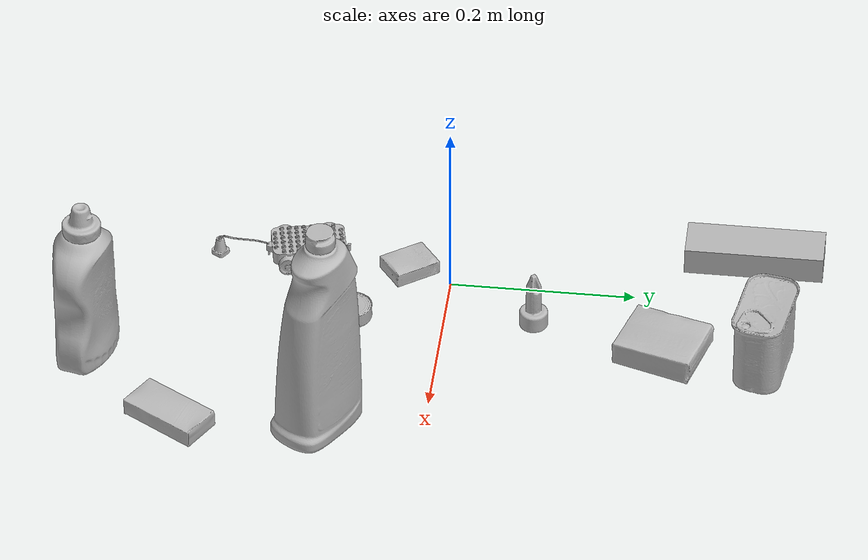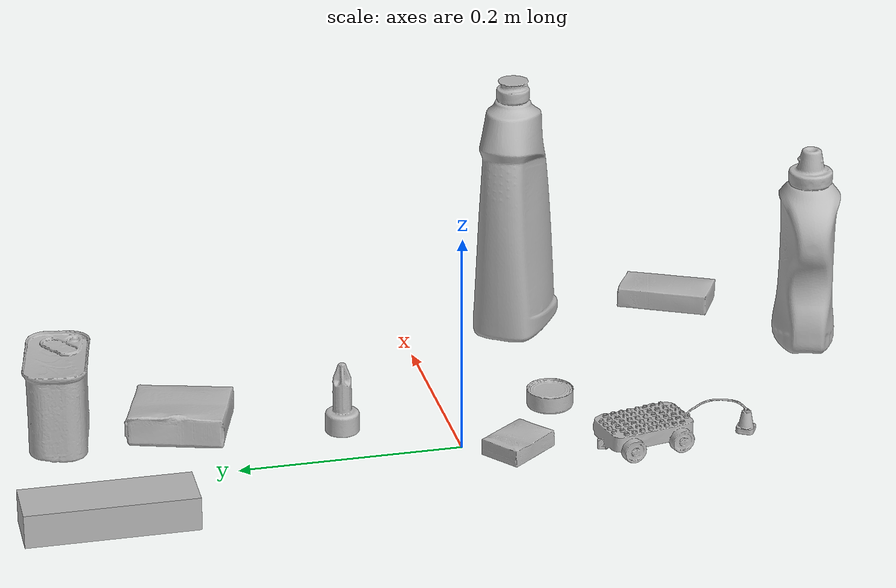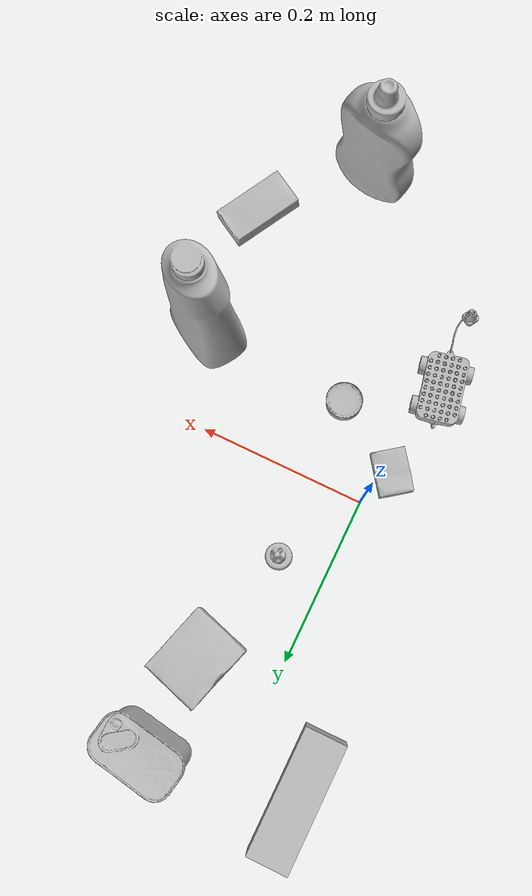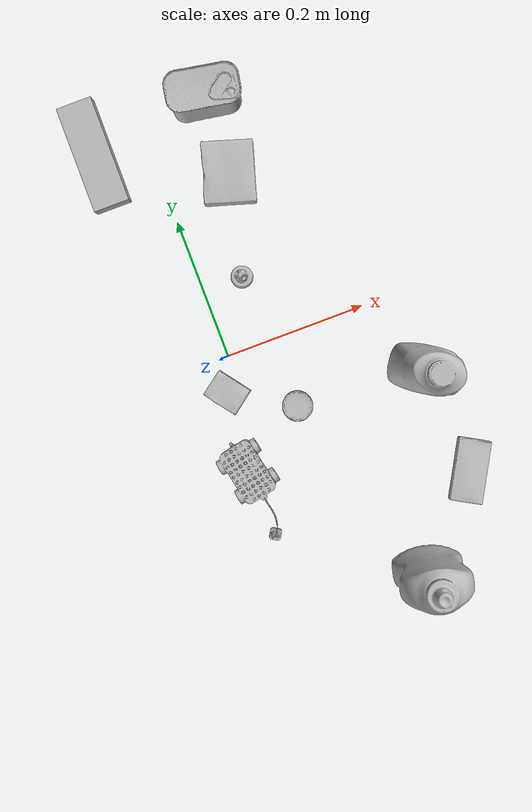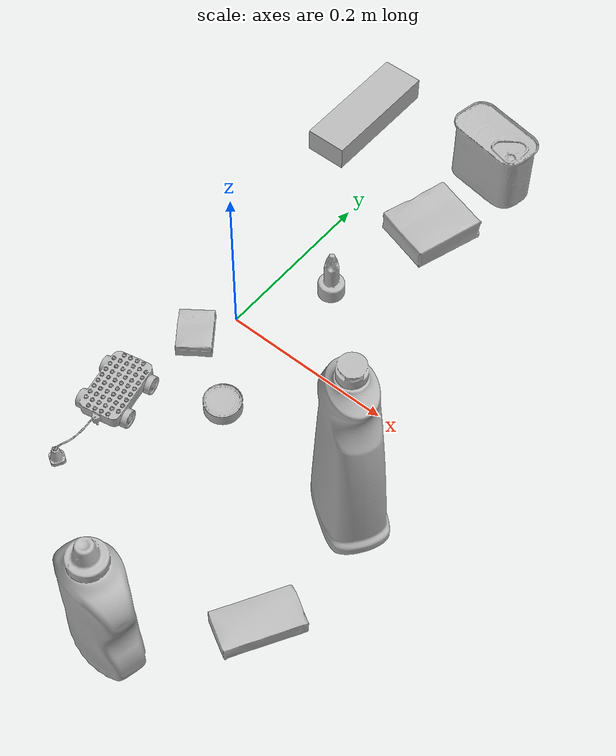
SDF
<sdf version="1.4">
  <world name="default">
    <light name="light1" type="point">
      <pose>0 0 1 0 0 0</pose>
      <diffuse>3 3 3 1</diffuse>
      <specular>3 3 3 1</specular>
    </light>
    <light name="light2" type="point">
      <pose>0 0.5 2 0 0 0</pose>
      <diffuse>1 1 1 1</diffuse>
      <specular>1 1 1 1</specular>
    </light>
    <light name="light3" type="point">
      <pose>0 0.5 2 0 0 0</pose>
      <diffuse>3 3 3 1</diffuse>
      <specular>3 3 3 1</specular>
    </light>
    <scene>
      <ambient>0.7 0.7 0.7</ambient>
    </scene>
    <model name="bottle1">
      <link name="link_bottle1">
        <collision name="default">
          <geometry>
            <mesh>
              <uri>model://bleach_cleanser/collision_meshes/collision.obj</uri>
              <scale>1.0 1.0 1.0</scale>
            </mesh>
          </geometry>
          <surface>
            <friction>
              <ode>
                <mu>0.5</mu>
                <mu2>0.5</mu2>
              </ode>
            </friction>
          <contact>
        <ode>
            <max_vel>0</max_vel>
            <min_depth>0.0001</min_depth>
            <kp>1e8</kp>
        </ode>
    </contact></surface>
        </collision>
        <visual name="default">
          <geometry>
            <mesh>
              <uri>model://bleach_cleanser/visual_meshes/visual.dae</uri>
              <scale>1.0 1.0 1.0</scale>
            </mesh>
          </geometry>
        </visual>
        <inertial>
          <mass>0.8435376882553101</mass>
          <pose>0.00012193185102660209 0.0037838835269212723 -0.02442161925137043 -0.0738167136291003 0.00042011570398771517 -0.0068750683244174</pose>
          <inertia>
            <ixx>0.0041056215</ixx>
            <iyy>0.0038258375</iyy>
            <izz>0.0007019545</izz>
            <ixy>0</ixy>
            <ixz>0</ixz>
            <iyz>0</iyz>
          </inertia>
        </inertial>
      </link>
      <pose>0.2463461309671402 -0.11052606254816055 0.12578411400318146 -0.0001993119177610047 1.7531810342269447e-05 0.9987797853406499</pose>
    </model>
    <model name="bottle2">
      <link name="link_bottle2">
        <collision name="default">
          <geometry>
            <mesh>
              <uri>model://mustard_bottle/collision_meshes/collision.obj</uri>
              <scale>1.0 1.0 1.0</scale>
            </mesh>
          </geometry>
          <surface>
            <friction>
              <ode>
                <mu>0.5</mu>
                <mu2>0.5</mu2>
              </ode>
            </friction>
          <contact>
        <ode>
            <max_vel>0</max_vel>
            <min_depth>0.0001</min_depth>
            <kp>1e8</kp>
        </ode>
    </contact></surface>
        </collision>
        <visual name="default">
          <geometry>
            <mesh>
              <uri>model://mustard_bottle/visual_meshes/visual.dae</uri>
              <scale>1.0 1.0 1.0</scale>
            </mesh>
          </geometry>
        </visual>
        <inertial>
          <mass>0.5862947106361389</mass>
          <pose>0.0005032453336752951 -0.00015647400869056582 -0.01747579500079155 0.0004182326333961274 0.0009465780125852031 0.02485369627950655</pose>
          <inertia>
            <ixx>0.0016280604</ixx>
            <iyy>0.001428485</iyy>
            <izz>0.00042907606</izz>
            <ixy>0</ixy>
            <ixz>0</ixz>
            <iyz>0</iyz>
          </inertia>
        </inertial>
      </link>
      <pose>0.15435832738876343 -0.37025338411331177 0.09583084285259247 -0.012050664084523946 -0.004889691282828124 1.3181287856905737</pose>
    </model>
    <model name="toy1">
      <link name="link_toy1">
        <collision name="default">
          <geometry>
            <mesh>
              <uri>model://d_toy_airplane/collision_meshes/collision.obj</uri>
              <scale>1.0 1.0 1.0</scale>
            </mesh>
          </geometry>
          <surface>
            <friction>
              <ode>
                <mu>0.5</mu>
                <mu2>0.5</mu2>
              </ode>
            </friction>
          <contact>
        <ode>
            <max_vel>0</max_vel>
            <min_depth>0.0001</min_depth>
            <kp>1e8</kp>
        </ode>
    </contact></surface>
        </collision>
        <visual name="default">
          <geometry>
            <mesh>
              <uri>model://d_toy_airplane/visual_meshes/visual.dae</uri>
              <scale>1.0 1.0 1.0</scale>
            </mesh>
          </geometry>
        </visual>
        <inertial>
          <mass>0.016342557966709137</mass>
          <pose>9.410292841494083e-05 -5.809347931062803e-05 -0.011728093959391117 0.0002665850352305412 0.004678995185611379 0.5193821656772198</pose>
          <inertia>
            <ixx>4.8991824e-06</ixx>
            <iyy>4.9028777e-06</iyy>
            <izz>1.4790946e-06</izz>
            <ixy>0</ixy>
            <ixz>0</ixz>
            <iyz>0</iyz>
          </inertia>
        </inertial>
      </link>
      <pose>0.05722856521606445 0.0961107611656189 0.033339470624923706 0.0002079654775572587 -2.3111198552680254e-05 -0.894831703549501</pose>
    </model>
    <model name="toy2">
      <link name="link_toy2">
        <collision name="default">
          <geometry>
            <mesh>
              <uri>model://g_lego_duplo/collision_meshes/collision.obj</uri>
              <scale>0.5 0.5 0.5</scale>
            </mesh>
          </geometry>
          <surface>
            <friction>
              <ode>
                <mu>0.5</mu>
                <mu2>0.5</mu2>
              </ode>
            </friction>
          <contact>
        <ode>
            <max_vel>0</max_vel>
            <min_depth>0.0001</min_depth>
            <kp>1e8</kp>
        </ode>
    </contact></surface>
        </collision>
        <visual name="default">
          <geometry>
            <mesh>
              <uri>model://g_lego_duplo/visual_meshes/visual.dae</uri>
              <scale>0.5 0.5 0.5</scale>
            </mesh>
          </geometry>
        </visual>
        <inertial>
          <mass>0.06075087562203407</mass>
          <pose>-0.02502383105456829 0.0008777320035733283 0.0019403373589739203 0.010962969944672394 0.038108282316868566 -0.09653022106038826</pose>
          <inertia>
            <ixx>2.2007183e-05</ixx>
            <iyy>6.65348e-05</iyy>
            <izz>8.323752e-05</izz>
            <ixy>0</ixy>
            <ixz>0</ixz>
            <iyz>0</iyz>
          </inertia>
        </inertial>
      </link>
      <pose>-0.025378108024597168 -0.1881949007511139 0.014916321262717247 0.0003797744002858775 -0.0024250606948160946 -1.3647423657908846</pose>
    </model>
    <model name="can1">
      <link name="link_can1">
        <collision name="default">
          <geometry>
            <mesh>
              <uri>model://potted_meat_can/collision_meshes/collision.obj</uri>
              <scale>1.0 1.0 1.0</scale>
            </mesh>
          </geometry>
          <surface>
            <friction>
              <ode>
                <mu>0.5</mu>
                <mu2>0.5</mu2>
              </ode>
            </friction>
          <contact>
        <ode>
            <max_vel>0</max_vel>
            <min_depth>0.0001</min_depth>
            <kp>1e8</kp>
        </ode>
    </contact></surface>
        </collision>
        <visual name="default">
          <geometry>
            <mesh>
              <uri>model://potted_meat_can/visual_meshes/visual.dae</uri>
              <scale>1.0 1.0 1.0</scale>
            </mesh>
          </geometry>
        </visual>
        <inertial>
          <mass>0.20078136026859283</mass>
          <pose>0.00022888144303578883 -5.9891190176131204e-05 -0.0006367445457726717 -0.02809335636395505 -0.007232596981483405 0.015406261474000347</pose>
          <inertia>
            <ixx>0.0002582842</ixx>
            <iyy>0.00015692727</iyy>
            <izz>0.0001878526</izz>
            <ixy>0</ixy>
            <ixz>0</ixz>
            <iyz>0</iyz>
          </inertia>
        </inertial>
      </link>
      <pose>0.09766842424869537 0.34410300850868225 0.042128004133701324 8.066883399632988e-09 -4.353713641748999e-07 1.389899091038513</pose>
    </model>
    <model name="can2">
      <link name="link_can2">
        <collision name="default">
          <geometry>
            <mesh>
              <uri>model://tuna_fish_can/collision_meshes/collision.obj</uri>
              <scale>0.5 0.5 0.5</scale>
            </mesh>
          </geometry>
          <surface>
            <friction>
              <ode>
                <mu>0.5</mu>
                <mu2>0.5</mu2>
              </ode>
            </friction>
          <contact>
        <ode>
            <max_vel>0</max_vel>
            <min_depth>0.0001</min_depth>
            <kp>1e8</kp>
        </ode>
    </contact></surface>
        </collision>
        <visual name="default">
          <geometry>
            <mesh>
              <uri>model://tuna_fish_can/visual_meshes/visual.dae</uri>
              <scale>0.5 0.5 0.5</scale>
            </mesh>
          </geometry>
        </visual>
        <inertial>
          <mass>0.014736190438270569</mass>
          <pose>-2.036184559983667e-05 -7.256420758494642e-06 -0.0005269023822620511 -0.0017944748482382063 0.00017166274907885265 0.24056368509195397</pose>
          <inertia>
            <ixx>1.992355e-06</ixx>
            <iyy>1.9840513e-06</iyy>
            <izz>3.409204e-06</izz>
            <ixy>0</ixy>
            <ixz>0</ixz>
            <iyz>0</iyz>
          </inertia>
        </inertial>
      </link>
      <pose>0.06662191450595856 -0.0981404036283493 0.008520001545548439 1.0987129239568687e-08 4.719356563209437e-09 -0.4120406599877641</pose>
    </model>
    <model name="box1">
      <link name="link_box1">
        <collision name="default">
          <geometry>
            <mesh>
              <uri>model://sugar_box/collision_meshes/collision.obj</uri>
              <scale>0.5 0.5 0.5</scale>
            </mesh>
          </geometry>
          <surface>
            <friction>
              <ode>
                <mu>0.5</mu>
                <mu2>0.5</mu2>
              </ode>
            </friction>
          <contact>
        <ode>
            <max_vel>0</max_vel>
            <min_depth>0.0001</min_depth>
            <kp>1e8</kp>
        </ode>
    </contact></surface>
        </collision>
        <visual name="default">
          <geometry>
            <mesh>
              <uri>model://sugar_box/visual_meshes/visual.dae</uri>
              <scale>0.5 0.5 0.5</scale>
            </mesh>
          </geometry>
        </visual>
        <inertial>
          <mass>0.12222740799188614</mass>
          <pose>0.0005171863595023751 1.9245549992774613e-05 -0.00018182404164690524 -0.000404625834306888 0.0010506637544316808 0.0026153790219515644</pose>
          <inertia>
            <ixx>2.5459884e-05</ixx>
            <iyy>8.229157e-05</iyy>
            <izz>9.851283e-05</izz>
            <ixy>0</ixy>
            <ixz>0</ixz>
            <iyz>0</iyz>
          </inertia>
        </inertial>
      </link>
      <pose>0.2588484585285187 -0.2655961513519287 0.011399300768971443 0.0007757747859548792 -0.023432858473551803 -2.0924787524856012</pose>
    </model>
    <model name="box2">
      <link name="link_box2">
        <collision name="default">
          <geometry>
            <mesh>
              <uri>model://jenga/collision_meshes/collision.obj</uri>
              <scale>1.0 1.0 1.0</scale>
            </mesh>
          </geometry>
          <surface>
            <friction>
              <ode>
                <mu>0.5</mu>
                <mu2>0.5</mu2>
              </ode>
            </friction>
          <contact>
        <ode>
            <max_vel>0</max_vel>
            <min_depth>0.0001</min_depth>
            <kp>1e8</kp>
        </ode>
    </contact></surface>
        </collision>
        <visual name="default">
          <geometry>
            <mesh>
              <uri>model://jenga/visual_meshes/visual.dae</uri>
              <scale>1.0 1.0 1.0</scale>
            </mesh>
          </geometry>
        </visual>
        <inertial>
          <mass>0.17645145952701569</mass>
          <pose>-2.502855807051674e-07 -0.00010250011109746993 -4.0923405322246253e-05 0.0 -7.342155186052628e-07 0.0</pose>
          <inertia>
            <ixx>4.8828406e-05</ixx>
            <iyy>0.00033085994</iyy>
            <izz>0.00035322108</izz>
            <ixy>0</ixy>
            <ixz>0</ixz>
            <iyz>0</iyz>
          </inertia>
        </inertial>
      </link>
      <pose>-0.07474850863218307 0.3240015506744385 0.014999995008111 1.3191529690681904e-08 -2.8268179672187254e-10 -1.5728752129419858</pose>
    </model>
    <model name="box3">
      <link name="link_box3">
        <collision name="default">
          <geometry>
            <mesh>
              <uri>model://gelatin_box/collision_meshes/collision.obj</uri>
              <scale>1.0 1.0 1.0</scale>
            </mesh>
          </geometry>
          <surface>
            <friction>
              <ode>
                <mu>0.5</mu>
                <mu2>0.5</mu2>
              </ode>
            </friction>
          <contact>
        <ode>
            <max_vel>0</max_vel>
            <min_depth>0.0001</min_depth>
            <kp>1e8</kp>
        </ode>
    </contact></surface>
        </collision>
        <visual name="default">
          <geometry>
            <mesh>
              <uri>model://gelatin_box/visual_meshes/visual.dae</uri>
              <scale>1.0 1.0 1.0</scale>
            </mesh>
          </geometry>
        </visual>
        <inertial>
          <mass>0.13059620559215546</mass>
          <pose>0.0004319618456065655 0.00011156871914863586 -0.0003640321083366871 -0.0010503721928909568 -0.00475581775899517 0.01644055574591333</pose>
          <inertia>
            <ixx>9.219027e-05</ixx>
            <iyy>6.585102e-05</iyy>
            <izz>0.00014033413</izz>
            <ixy>0</ixy>
            <ixz>0</ixz>
            <iyz>0</iyz>
          </inertia>
        </inertial>
      </link>
      <pose>0.09131327271461487 0.23713889718055725 0.015168314799666405 0.005597429125169932 -0.007304564717851653 2.8372785143726764</pose>
    </model>
    <model name="box4">
      <link name="link_box4">
        <collision name="default">
          <geometry>
            <mesh>
              <uri>model://cracker_box/collision_meshes/collision.obj</uri>
              <scale>0.25 0.25 0.25</scale>
            </mesh>
          </geometry>
          <surface>
            <friction>
              <ode>
                <mu>0.5</mu>
                <mu2>0.5</mu2>
              </ode>
            </friction>
          <contact>
        <ode>
            <max_vel>0</max_vel>
            <min_depth>0.0001</min_depth>
            <kp>1e8</kp>
        </ode>
    </contact></surface>
        </collision>
        <visual name="default">
          <geometry>
            <mesh>
              <uri>model://cracker_box/visual_meshes/visual.dae</uri>
              <scale>0.25 0.25 0.25</scale>
            </mesh>
          </geometry>
        </visual>
        <inertial>
          <mass>0.04771818593144417</mass>
          <pose>0.0002366032567806542 6.358561950037256e-05 -0.00042573839891701937 -0.00031620769108308636 -0.011106489600173282 0.0025467959336867136</pose>
          <inertia>
            <ixx>7.5858593e-06</ixx>
            <iyy>1.2525745e-05</iyy>
            <izz>1.7875387e-05</izz>
            <ixy>0</ixy>
            <ixz>0</ixz>
            <iyz>0</iyz>
          </inertia>
        </inertial>
      </link>
      <pose>-0.018128372728824615 -0.04662533849477768 0.009096023626625538 -0.014050387195532978 -0.005016612935408852 -0.9304476095280488</pose>
    </model>
  <physics type="ode">
      <max_contacts>50</max_contacts>
      <ode>
        <solver>
          <type>quick</type>
          <iters>75</iters>
        </solver>
        <constraints>
          <contact_max_correcting_vel>0</contact_max_correcting_vel>
          <contact_surface_layer>0</contact_surface_layer>
        </constraints>
      </ode>
    </physics></world>
</sdf>
